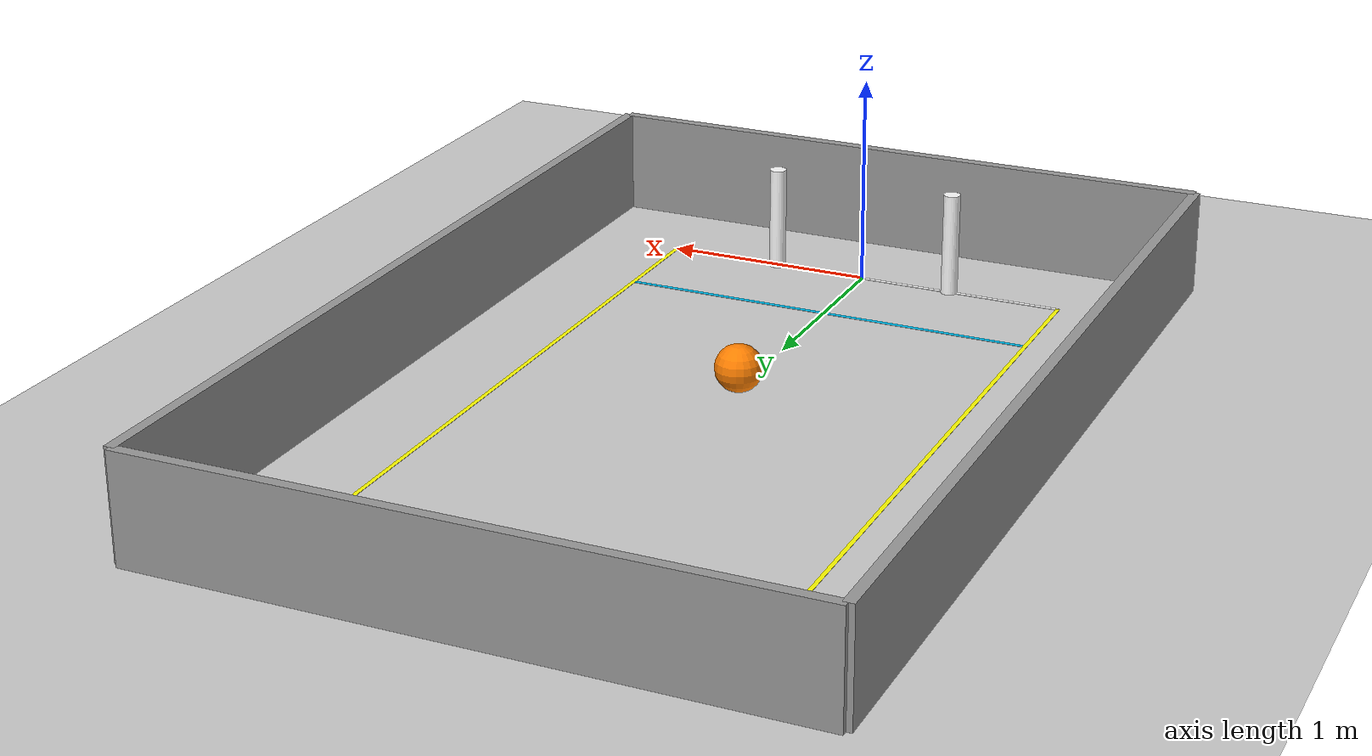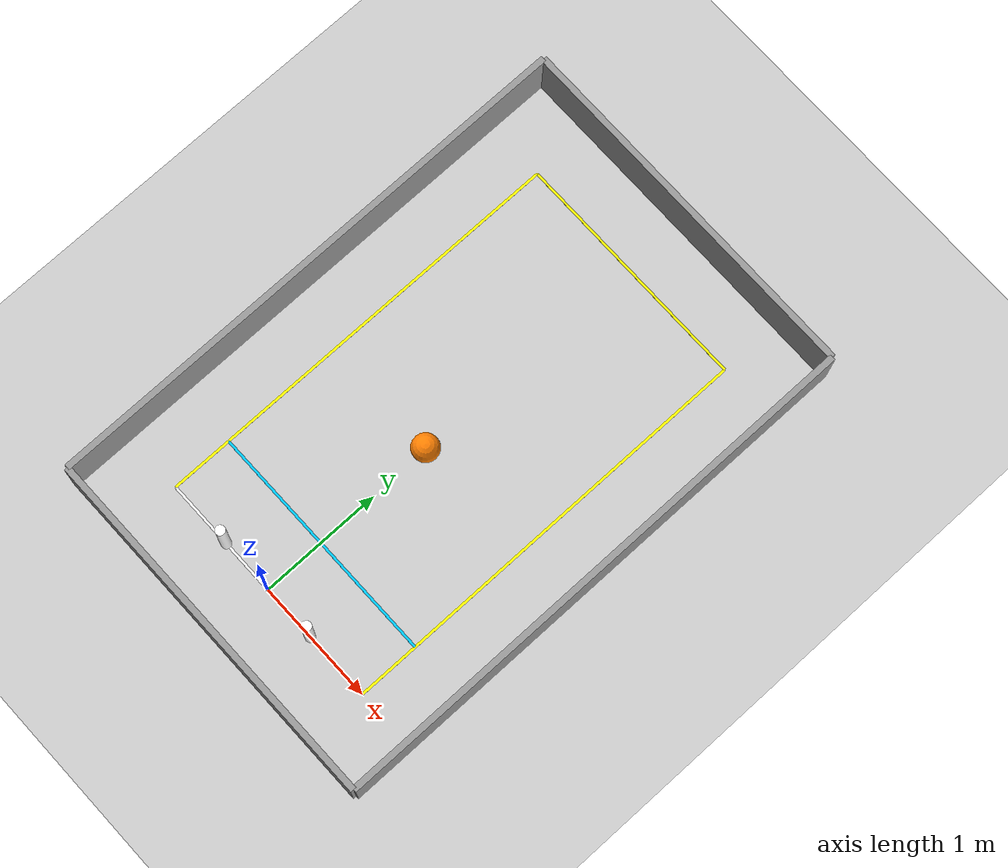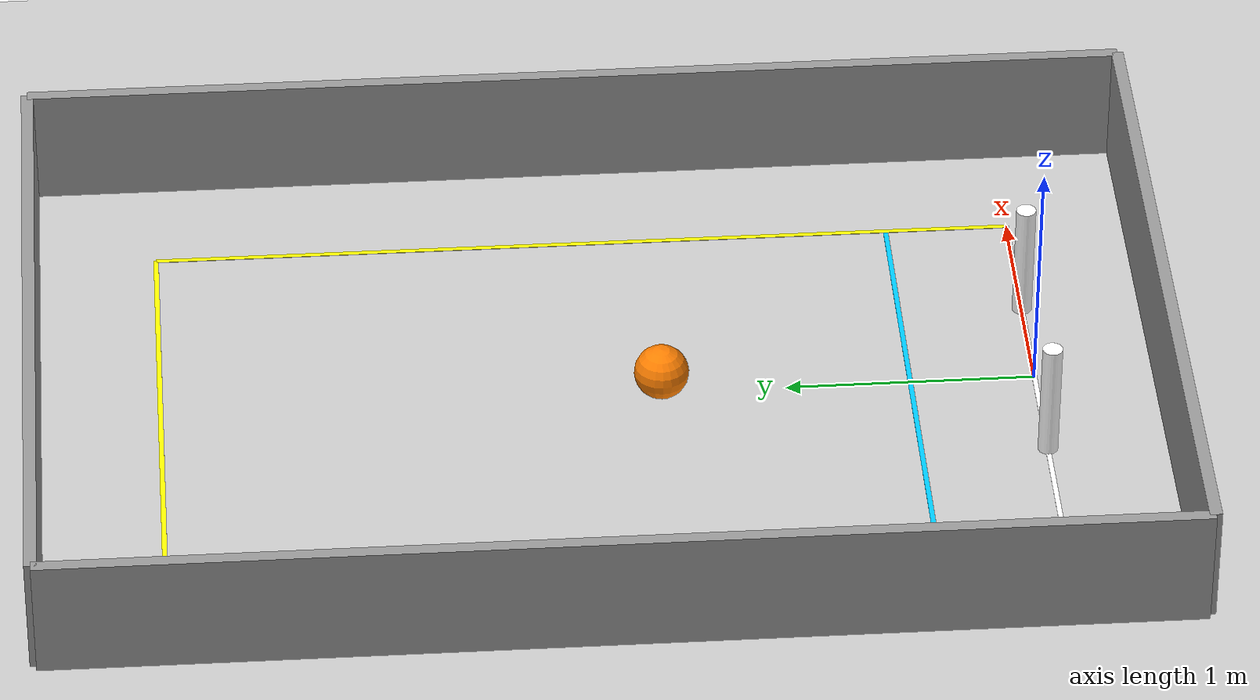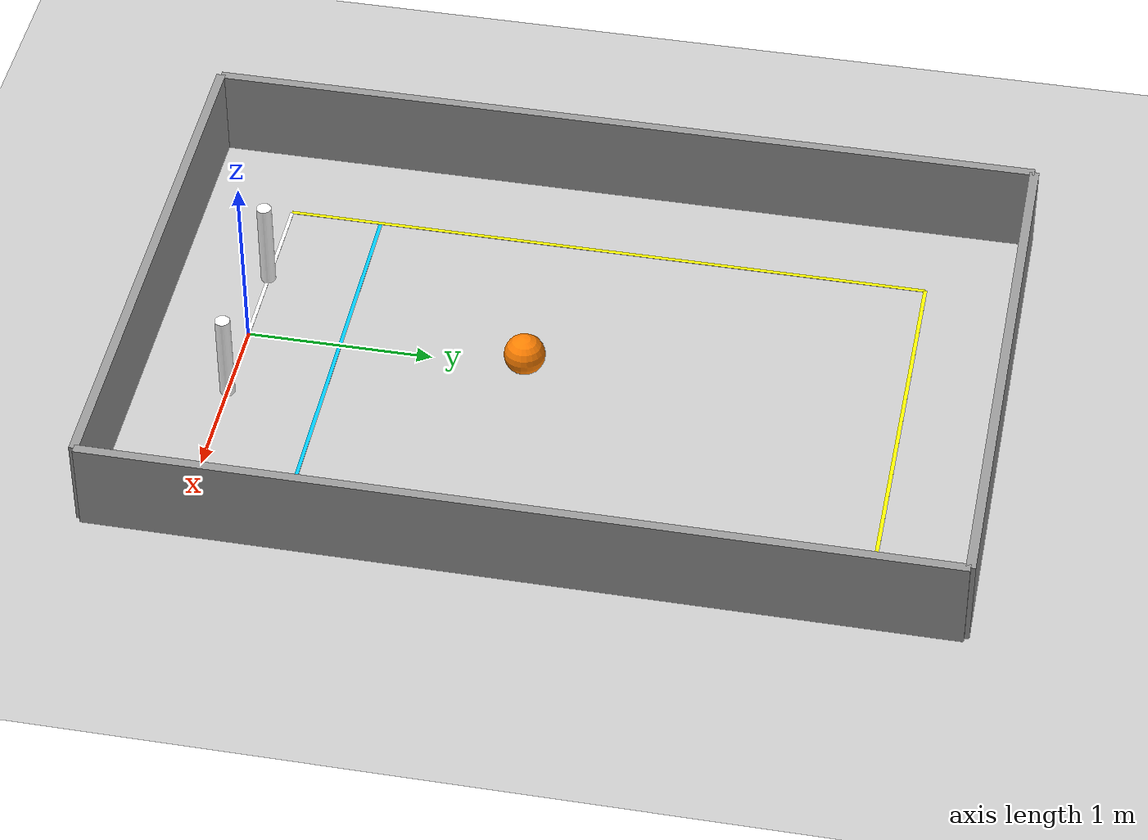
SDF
<?xml version="1.0" ?>
<sdf version="1.6">
  <world name="goalkeeper">

    <include><uri>model://ground_plane</uri></include>
    <include><uri>model://sun</uri></include>

    <physics type="ode">
      <real_time_update_rate>1000.0</real_time_update_rate>
      <max_step_size>0.001</max_step_size>
      <real_time_factor>1</real_time_factor>
    </physics>

    <!-- 球門柱  (X=±0.45, Y=0)                                       -->
    <model name="post_left">
      <static>true</static>
      <pose>-0.45 0 0.25 0 0 0</pose>
      <link name="link">
        <collision name="col">
          <geometry><cylinder><radius>0.04</radius><length>0.5</length></cylinder></geometry>
        </collision>
        <visual name="vis">
          <geometry><cylinder><radius>0.04</radius><length>0.5</length></cylinder></geometry>
          <material>
            <ambient>1 1 1 1</ambient><diffuse>1 1 1 1</diffuse>
          </material>
        </visual>
      </link>
    </model>

    <model name="post_right">
      <static>true</static>
      <pose>0.45 0 0.25 0 0 0</pose>
      <link name="link">
        <collision name="col">
          <geometry><cylinder><radius>0.04</radius><length>0.5</length></cylinder></geometry>
        </collision>
        <visual name="vis">
          <geometry><cylinder><radius>0.04</radius><length>0.5</length></cylinder></geometry>
          <material>
            <ambient>1 1 1 1</ambient><diffuse>1 1 1 1</diffuse>
          </material>
        </visual>
      </link>
    </model>

    <!-- 球  (初始位置 X=0, Y=1.5)                                    -->
    <model name="ball">
      <pose>0 1.5 0.11 0 0 0</pose>
      <link name="link">
        <inertial>
          <mass>0.43</mass>
          <inertia>
            <ixx>0.00212</ixx><ixy>0</ixy><ixz>0</ixz>
            <iyy>0.00212</iyy><iyz>0</iyz>
            <izz>0.00212</izz>
          </inertia>
        </inertial>
        <collision name="col">
          <geometry><sphere><radius>0.11</radius></sphere></geometry>
          <surface>
            <friction><ode><mu>0.5</mu><mu2>0.5</mu2></ode></friction>
            <bounce><restitution_coefficient>0.3</restitution_coefficient></bounce>
          </surface>
        </collision>
        <visual name="vis">
          <geometry><sphere><radius>0.11</radius></sphere></geometry>
          <material>
            <ambient>1 0.5 0 1</ambient><diffuse>1 0.5 0 1</diffuse>
          </material>
        </visual>
      </link>
    </model>

    <!-- 外牆（有碰撞，LiDAR 看得到），場地邊界外 0.5m               -->
    <!-- 牆高 0.5m，中心 Z=0.25m                                      -->

    <!-- 左牆  X=-1.5m，Y=-0.5~4.0，長=4.5m -->
    <model name="wall_left">
      <static>true</static>
      <pose>-1.5 1.75 0.25 0 0 0</pose>
      <link name="link">
        <collision name="col">
          <geometry><box><size>0.05 4.5 0.5</size></box></geometry>
        </collision>
        <visual name="vis">
          <geometry><box><size>0.05 4.5 0.5</size></box></geometry>
          <material><ambient>0.6 0.6 0.6 1</ambient><diffuse>0.6 0.6 0.6 1</diffuse></material>
        </visual>
      </link>
    </model>

    <!-- 右牆  X=+1.5m -->
    <model name="wall_right">
      <static>true</static>
      <pose>1.5 1.75 0.25 0 0 0</pose>
      <link name="link">
        <collision name="col">
          <geometry><box><size>0.05 4.5 0.5</size></box></geometry>
        </collision>
        <visual name="vis">
          <geometry><box><size>0.05 4.5 0.5</size></box></geometry>
          <material><ambient>0.6 0.6 0.6 1</ambient><diffuse>0.6 0.6 0.6 1</diffuse></material>
        </visual>
      </link>
    </model>

    <!-- 後牆（球門後方）Y=-0.5m，X=-1.5~+1.5，長=3.0m -->
    <model name="wall_back">
      <static>true</static>
      <pose>0 -0.5 0.25 0 0 0</pose>
      <link name="link">
        <collision name="col">
          <geometry><box><size>3.0 0.05 0.5</size></box></geometry>
        </collision>
        <visual name="vis">
          <geometry><box><size>3.0 0.05 0.5</size></box></geometry>
          <material><ambient>0.6 0.6 0.6 1</ambient><diffuse>0.6 0.6 0.6 1</diffuse></material>
        </visual>
      </link>
    </model>

    <!-- 遠端牆  Y=4.0m -->
    <model name="wall_far">
      <static>true</static>
      <pose>0 4.0 0.25 0 0 0</pose>
      <link name="link">
        <collision name="col">
          <geometry><box><size>3.0 0.05 0.5</size></box></geometry>
        </collision>
        <visual name="vis">
          <geometry><box><size>3.0 0.05 0.5</size></box></geometry>
          <material><ambient>0.6 0.6 0.6 1</ambient><diffuse>0.6 0.6 0.6 1</diffuse></material>
        </visual>
      </link>
    </model>

    <!-- 場地邊界標記（視覺用，無碰撞，高度 0.001m）                  -->

    <!-- 場地左邊界  X=-1.0m -->
    <model name="mark_field_left">
      <static>true</static>
      <pose>-1.0 1.75 0.001 0 0 0</pose>
      <link name="link">
        <visual name="vis">
          <geometry><box><size>0.02 3.5 0.002</size></box></geometry>
          <material><ambient>1 1 0 1</ambient><diffuse>1 1 0 1</diffuse></material>
        </visual>
      </link>
    </model>

    <!-- 場地右邊界  X=+1.0m -->
    <model name="mark_field_right">
      <static>true</static>
      <pose>1.0 1.75 0.001 0 0 0</pose>
      <link name="link">
        <visual name="vis">
          <geometry><box><size>0.02 3.5 0.002</size></box></geometry>
          <material><ambient>1 1 0 1</ambient><diffuse>1 1 0 1</diffuse></material>
        </visual>
      </link>
    </model>

    <!-- 場地遠端邊界  Y=3.5m -->
    <model name="mark_field_far">
      <static>true</static>
      <pose>0 3.5 0.001 0 0 0</pose>
      <link name="link">
        <visual name="vis">
          <geometry><box><size>2.0 0.02 0.002</size></box></geometry>
          <material><ambient>1 1 0 1</ambient><diffuse>1 1 0 1</diffuse></material>
        </visual>
      </link>
    </model>

    <!-- 球門線  Y=0m -->
    <model name="mark_goal_line">
      <static>true</static>
      <pose>0 0 0.001 0 0 0</pose>
      <link name="link">
        <visual name="vis">
          <geometry><box><size>2.0 0.02 0.002</size></box></geometry>
          <material><ambient>1 1 1 1</ambient><diffuse>1 1 1 1</diffuse></material>
        </visual>
      </link>
    </model>

    <!-- 機器人守門線  Y=0.5m -->
    <model name="mark_defense_line">
      <static>true</static>
      <pose>0 0.5 0.001 0 0 0</pose>
      <link name="link">
        <visual name="vis">
          <geometry><box><size>2.0 0.02 0.002</size></box></geometry>
          <material><ambient>0 0.8 1 1</ambient><diffuse>0 0.8 1 1</diffuse></material>
        </visual>
      </link>
    </model>

  </world>
</sdf>
